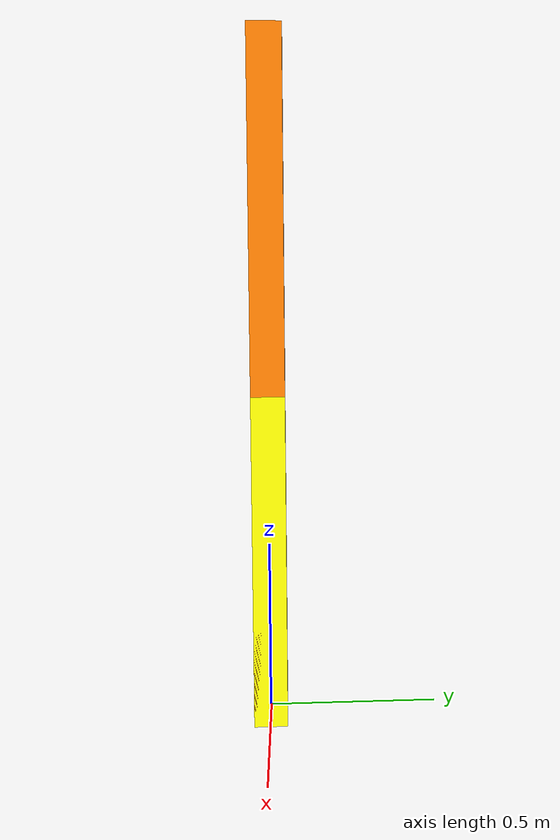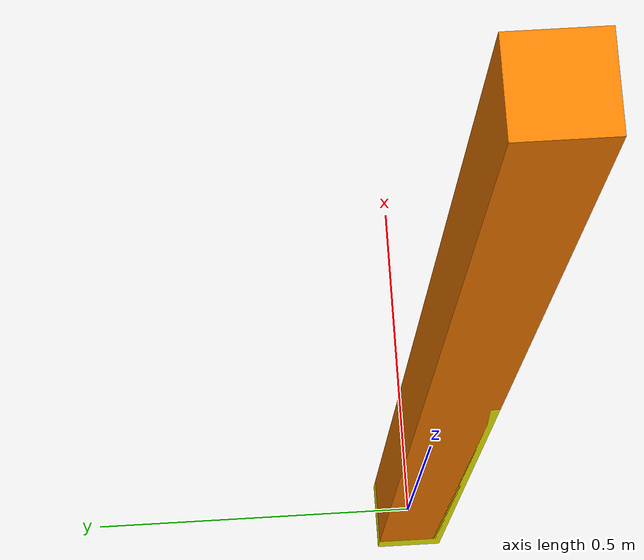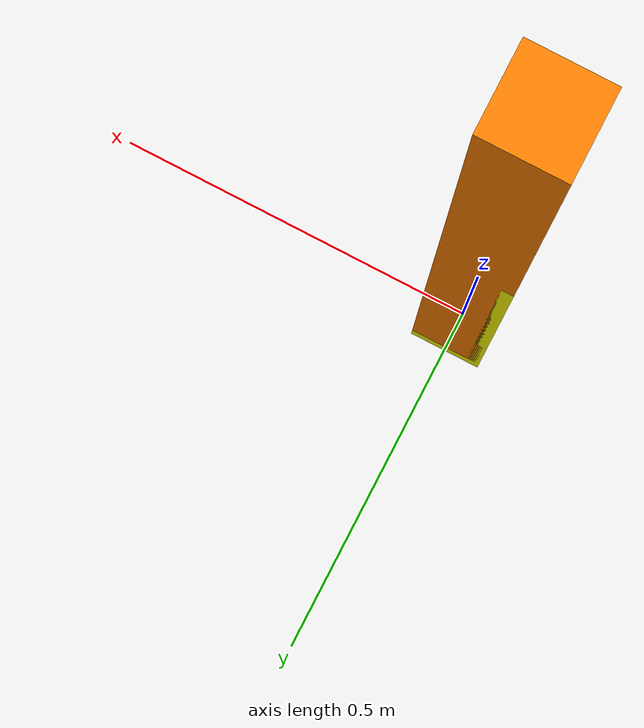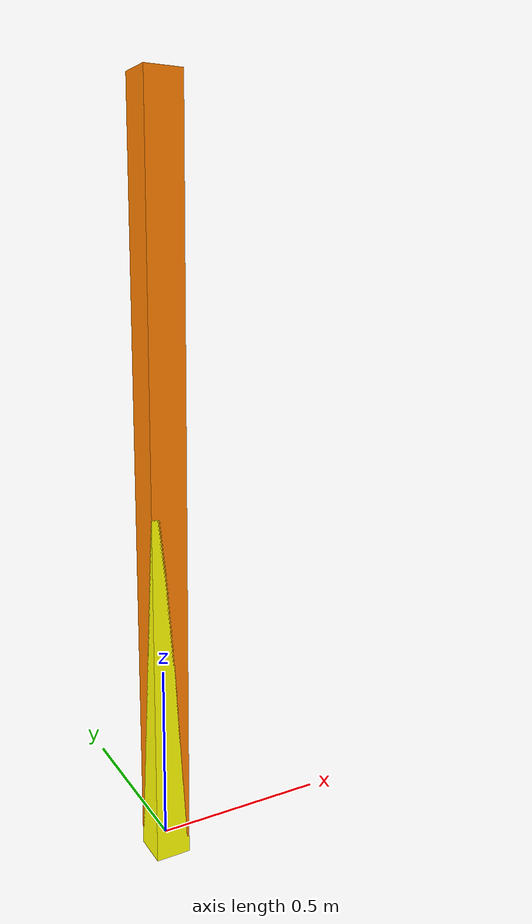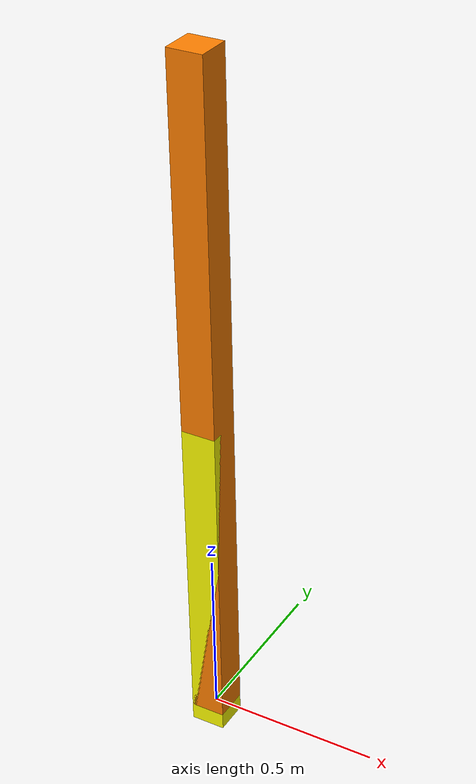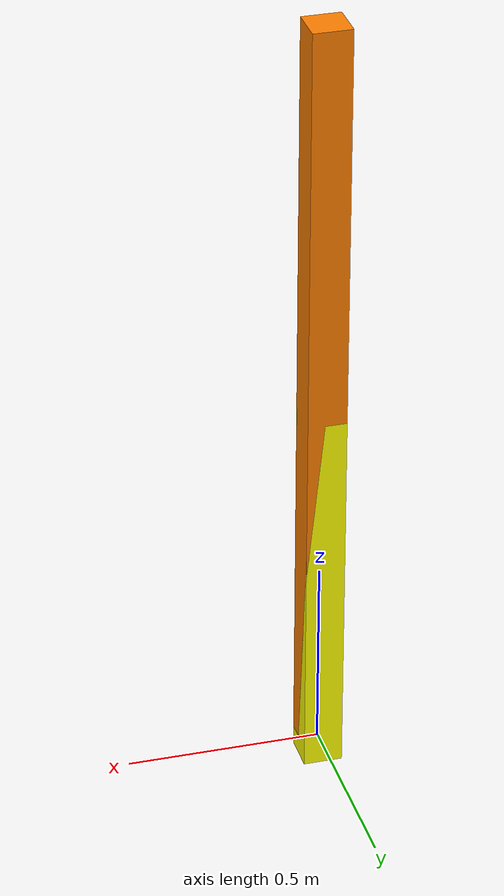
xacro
<?xml version="1.0"?>
<robot xmlns:xacro="http://www.ros.org/wiki/xacro" name="mybot">
  <xacro:macro name="mybot" params="parent *origin">

    <!-- Constants for robot dimensions -->
  <xacro:property name="mass" value="1" /> <!-- arbitrary value for mass -->
  <xacro:property name="width" value="0.1" /> <!-- Square dimensions (widthxwidth) of beams -->
  <xacro:property name="height1" value="2" /> <!-- Base Link -->
  <xacro:property name="height2" value="1" /> <!-- Link 1 -->
  <xacro:property name="axel_offset" value="0.05" /> <!-- Space btw top of beam and the each joint -->

    <joint name="base_joint" type="fixed">
      <xacro:insert_block name="origin" />
      <parent link="${parent}"/>
      <child link="base_link" />
    </joint>

    <!-- Base Link -->
    <link name="base_link">
      <collision>
        <origin xyz="0 0 ${height1/2}" rpy="0 0 0"/>
        <geometry>
          <box size="${width} ${width} ${height1}"/>
        </geometry>
      </collision>

      <visual>
        <origin xyz="0 0 ${height1/2}" rpy="0 0 0"/>
        <geometry>
          <box size="${width} ${width} ${height1}"/>
        </geometry>
        <material name="orange">
          <color rgba="1 0.5 0 1"/>
        </material>
      </visual>

      <inertial>
        <origin xyz="0 0 ${height1/2}" rpy="0 0 0"/>
        <mass value="${mass}"/>
        <inertia
          ixx="${mass / 12.0 * (width*width + height1*height1)}" ixy="0.0" ixz="0.0"
          iyy="${mass / 12.0 * (height1*height1 + width*width)}" iyz="0.0"
          izz="${mass / 12.0 * (width*width + width*width)}"/>
      </inertial>
    </link>
  <!-- Joint 1 -->
  <joint name="joint1" type="revolute">
    <parent link="base_link"/>
    <child link="link1"/>
    <origin xyz="0 0 0" rpy="0 0 0"/>
    <axis xyz="0 1 0"/>
    <limit lower="-3.14" upper="3.14" effort="100" velocity="1"/>
  </joint>

    <!-- Middle Link -->
    <link name="link1">
      <collision>
        <origin xyz="0 0 2" rpy="0 0 0"/>
        <geometry>
          <box size="${width} ${width} ${height2}"/>
        </geometry>
      </collision>

      <visual>
        <origin xyz="0 0 ${height2/2 - axel_offset}" rpy="0 0 0"/>
        <geometry>
          <box size="${width} ${width} ${height2}"/>
        </geometry>
        <material name="yellow">
          <color rgba="1 1 0 1"/>
        </material>
      </visual>

      <inertial>
        <origin xyz="0 0 -${height2/2}" rpy="0 0 0"/>
        <mass value="${mass}"/>
        <inertia
          ixx="${mass / 12.0 * (width*width + height2*height2)}" ixy="0.0" ixz="0.0"
          iyy="${mass / 12.0 * (height2*height2 + width*width)}" iyz="0.0"
          izz="${mass / 12.0 * (width*width + width*width)}"/>
      </inertial>
    </link>

  </xacro:macro>

  <!-- Create the robot -->
  <link name="world"/>
  <xacro:mybot parent="world">
    <origin xyz="0 0 0" rpy="0 0 0"/>
  </xacro:mybot>

  <!-- Import RRBot ros2_control description -->

  <!-- ros2_control configuration -->
  <ros2_control name="MyBot Control" type="system">
    <hardware>
      <plugin>ros2_control_demo_example_1/MyBotSystemPositionOnlyHardware</plugin>
      <param name="port_name">/dev/ttyUSB0</param>
      <param name="baud_rate">115200</param>
    </hardware>

    <joint name="joint1">
      <command_interface name="position">
        <param name="min">-1</param>
        <param name="max">1</param>
      </command_interface>
      <state_interface name="position"/>
      <param name="servo_id">2</param>
    </joint>
  </ros2_control>

</robot>
